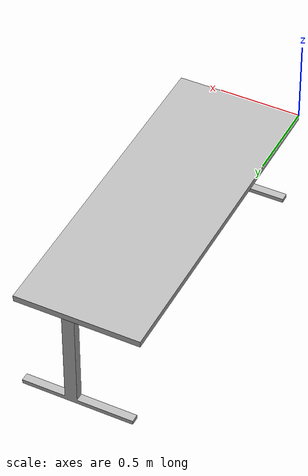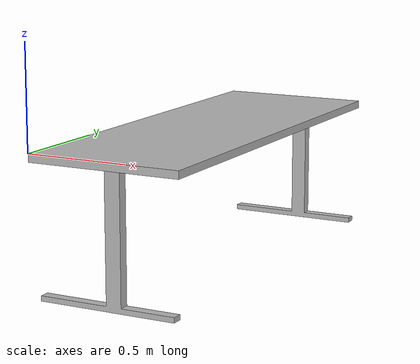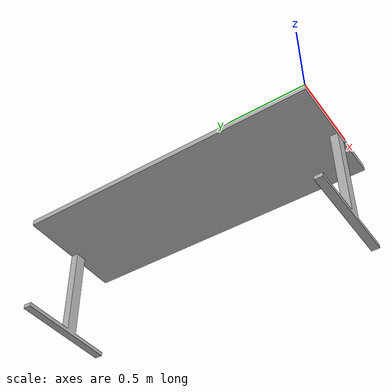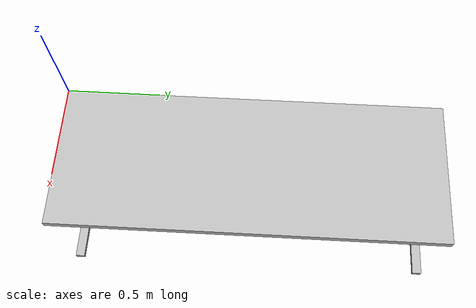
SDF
<?xml version="1.0" ?>
<sdf version="1.11">
  <model name="table_v2">
    <link name="base_link">
      <inertial>
        <mass>0.0001</mass>
        <inertia>
          <ixx>1e-09</ixx>
          <ixy>0</ixy>
          <ixz>0</ixz>
          <iyy>1e-09</iyy>
          <iyz>0</iyz>
          <izz>1e-09</izz>
        </inertia>
      </inertial>
    </link>
    <link name="table_1">
      <inertial>
        <pose>0.40636768447837157 1.016000000000001 -0.27671319520174503 0.0 -0.0 0.0</pose>
        <mass>81.14546351520002</mass>
        <inertia>
          <ixx>65.75610532511087</ixx>
          <ixy>7.105427357601002e-15</ixy>
          <ixz>0.19226357771955982</ixz>
          <iyy>7.434117692392729</iyy>
          <iyz>1.0658141036401503e-14</iyz>
          <izz>62.46114856315246</izz>
        </inertia>
      </inertial>
      <visual name="table_1__tabletop_visual">
        <geometry>
          <mesh>
            <scale>0.01 0.01 0.01</scale>
            <uri>meshes/table_1/tabletop_visual.obj</uri>
          </mesh>
        </geometry>
      </visual>
      <visual name="table_1__leg_right_visual">
        <geometry>
          <mesh>
            <scale>0.01 0.01 0.01</scale>
            <uri>meshes/table_1/leg_right_visual.obj</uri>
          </mesh>
        </geometry>
      </visual>
      <visual name="table_1__leg_left_visual">
        <geometry>
          <mesh>
            <scale>0.01 0.01 0.01</scale>
            <uri>meshes/table_1/leg_left_visual.obj</uri>
          </mesh>
        </geometry>
      </visual>
      <collision name="table_1__tabletop_collision">
        <pose relative_to="__model__">0.381 1.016 -0.01905 -0.0 -1.5707963267948966 0</pose>
        <geometry>
          <box>
            <size>0.0381 2.032 0.762</size>
          </box>
        </geometry>
      </collision>
      <collision name="table_1__leg_right_collision">
        <pose relative_to="__model__">0.3937 0.0254 -0.3556 -0.0 -1.5707963267948966 0</pose>
        <geometry>
          <box>
            <size>0.635 0.0508 0.6858</size>
          </box>
        </geometry>
      </collision>
      <collision name="table_1__leg_left_collision">
        <pose relative_to="__model__">0.3937 2.0066 -0.3556 -0.0 -1.5707963267948966 0</pose>
        <geometry>
          <box>
            <size>0.635 0.05080000000000012 0.6858</size>
          </box>
        </geometry>
      </collision>
    </link>
    <joint name="base_link_joint" type="fixed">
      <parent>base_link</parent>
      <child>table_1</child>
      <axis/>
    </joint>
  </model>
</sdf>
